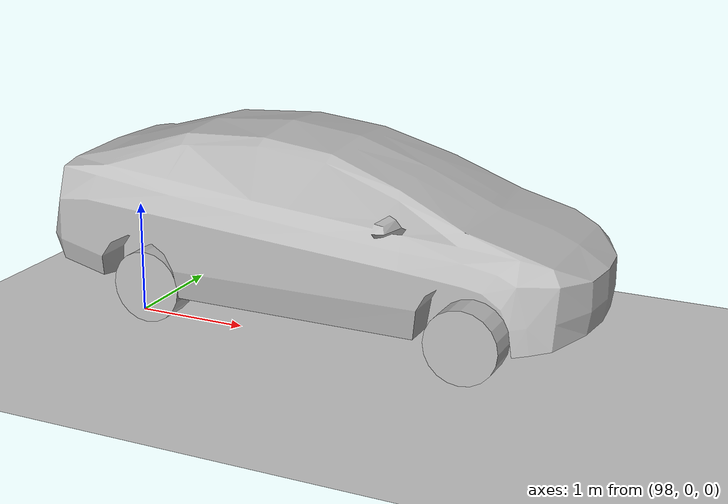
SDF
<?xml version="1.0" encoding="UTF-8"?>
<sdf version="1.9">
  <world name="default">
    <physics type="ode">
      <max_step_size>0.004</max_step_size>
      <real_time_factor>1.0</real_time_factor>
      <real_time_update_rate>250</real_time_update_rate>
    </physics>
    <gravity>0 0 -9.8</gravity>
    <magnetic_field>6e-06 2.3e-05 -4.2e-05</magnetic_field>
    <atmosphere type="adiabatic"/>
    <scene>
      <grid>false</grid>
      <ambient>0.4 0.4 0.4 1</ambient>
      <background>0.7 0.7 0.7 1</background>
      <shadows>true</shadows>
    </scene>
    <model name="ground_plane">
      <static>true</static>
      <link name="link">
        <collision name="collision">
          <geometry>
            <plane>
              <normal>0 0 1</normal>
              <size>1 1</size>
            </plane>
          </geometry>
          <surface>
            <friction>
              <ode/>
            </friction>
            <bounce/>
            <contact/>
          </surface>
        </collision>
        <visual name="visual">
          <geometry>
            <plane>
              <normal>0 0 1</normal>
              <size>500 500</size>
            </plane>
          </geometry>
          <material>
            <ambient>0.8 0.8 0.8 1</ambient>
            <diffuse>0.8 0.8 0.8 1</diffuse>
            <specular>0.8 0.8 0.8 1</specular>
          </material>
        </visual>
        <pose>0 0 0 0 -0 0</pose>
        <inertial>
          <pose>0 0 0 0 -0 0</pose>
          <mass>1</mass>
          <inertia>
            <ixx>1</ixx>
            <ixy>0</ixy>
            <ixz>0</ixz>
            <iyy>1</iyy>
            <iyz>0</iyz>
            <izz>1</izz>
          </inertia>
        </inertial>
        <enable_wind>false</enable_wind>
      </link>
      <pose>0 0 0 0 -0 0</pose>
      <self_collide>false</self_collide>
    </model>
    <light name="sunUTC" type="directional">
      <pose>0 0 500 0 -0 0</pose>
      <cast_shadows>true</cast_shadows>
      <intensity>1</intensity>
      <direction>0.001 0.625 -0.78</direction>
      <diffuse>0.904 0.904 0.904 1</diffuse>
      <specular>0.271 0.271 0.271 1</specular>
      <attenuation>
        <range>2000</range>
        <linear>0</linear>
        <constant>1</constant>
        <quadratic>0</quadratic>
      </attenuation>
      <spot>
        <inner_angle>0</inner_angle>
        <outer_angle>0</outer_angle>
        <falloff>0</falloff>
      </spot>
    </light>
    <spherical_coordinates>
      <surface_model>EARTH_WGS84</surface_model>
      <world_frame_orientation>ENU</world_frame_orientation>
      <latitude_deg>47.397971057728974</latitude_deg>
      <longitude_deg> 8.546163739800146</longitude_deg>
      <elevation>0</elevation>
    </spherical_coordinates>

    <!--                        PRIUS CAR MODEL                           -->
    <model name="prius_hybrid">
      <pose>100 0 0.4 0 0 0</pose>
      <static>true</static>

      <!-- ── Chassis ── -->
      <link name="chassis">
        <pose>0 0 0 0 0 0</pose>
        <inertial>
          <mass>1326</mass>
          <inertia>
            <ixx>534.7</ixx><ixy>0</ixy><ixz>0</ixz>
            <iyy>2099.4</iyy><iyz>0</iyz>
            <izz>2139.2</izz>
          </inertia>
        </inertial>

        <collision name="chassis_collision">
          <pose>0 0 0.05 0 0 0</pose>
          <geometry>
            <box><size>4.55 1.76 0.6</size></box>
          </geometry>
        </collision>

        <collision name="roof_collision">
          <pose>-0.15 0 0.85 0 0 0</pose>
          <geometry>
            <box><size>2.5 1.5 0.5</size></box>
          </geometry>
        </collision>

        <visual name="chassis_visual">
          <pose>0 0 0 0 0 1.5707963</pose>
          <geometry>
            <mesh>
              <uri>file:///home/cyinyong/Workspace/gazebo_models/car_demo/prius_description/meshes/hybrid_body.obj</uri>
              <scale>0.01 0.01 0.01</scale>
            </mesh>
          </geometry>
        </visual>
      </link>

      <!-- ── Front-left wheel ── -->
      <link name="front_left_wheel">
        <pose>1.39 0.75 0.15 0 0 1.5707963</pose>
        <inertial>
          <mass>11</mass>
          <inertia>
            <ixx>0.58411</ixx><ixy>0</ixy><ixz>0</ixz>
            <iyy>0.58411</iyy><iyz>0</iyz>
            <izz>1.0902</izz>
          </inertia>
        </inertial>
        <collision name="collision">
          <geometry>
            <cylinder><radius>0.31</radius><length>0.24</length></cylinder>
          </geometry>
          <surface>
            <friction><ode><mu>1.0</mu><mu2>1.0</mu2></ode></friction>
          </surface>
        </collision>
        <visual name="visual">
          <geometry>
            <mesh>
              <uri>file:///home/cyinyong/Workspace/gazebo_models/car_demo/prius_description/meshes/wheel.obj</uri>
              <scale>0.01 0.01 0.01</scale>
            </mesh>
          </geometry>
        </visual>
      </link>

      <!-- ── Front-right wheel ── -->
      <link name="front_right_wheel">
        <pose>1.39 -0.75 0.15 0 0 1.5707963</pose>
        <inertial>
          <mass>11</mass>
          <inertia>
            <ixx>0.58411</ixx><ixy>0</ixy><ixz>0</ixz>
            <iyy>0.58411</iyy><iyz>0</iyz>
            <izz>1.0902</izz>
          </inertia>
        </inertial>
        <collision name="collision">
          <geometry>
            <cylinder><radius>0.31</radius><length>0.24</length></cylinder>
          </geometry>
          <surface>
            <friction><ode><mu>1.0</mu><mu2>1.0</mu2></ode></friction>
          </surface>
        </collision>
        <visual name="visual">
          <geometry>
            <mesh>
              <uri>file:///home/cyinyong/Workspace/gazebo_models/car_demo/prius_description/meshes/wheel.obj</uri>
              <scale>0.01 0.01 0.01</scale>
            </mesh>
          </geometry>
        </visual>
      </link>

      <!-- ── Rear-left wheel ── -->
      <link name="rear_left_wheel">
        <pose>-1.39 0.75 0.15 0 0 1.5707963</pose>
        <inertial>
          <mass>11</mass>
          <inertia>
            <ixx>0.58411</ixx><ixy>0</ixy><ixz>0</ixz>
            <iyy>0.58411</iyy><iyz>0</iyz>
            <izz>1.0902</izz>
          </inertia>
        </inertial>
        <collision name="collision">
          <geometry>
            <cylinder><radius>0.31</radius><length>0.24</length></cylinder>
          </geometry>
          <surface>
            <friction><ode><mu>1.0</mu><mu2>1.0</mu2></ode></friction>
          </surface>
        </collision>
        <visual name="visual">
          <geometry>
            <mesh>
              <uri>file:///home/cyinyong/Workspace/gazebo_models/car_demo/prius_description/meshes/wheel.obj</uri>
              <scale>0.01 0.01 0.01</scale>
            </mesh>
          </geometry>
        </visual>
      </link>

      <!-- ── Rear-right wheel ── -->
      <link name="rear_right_wheel">
        <pose>-1.39 -0.75 0.2 0 0 1.5707963</pose>
        <inertial>
          <mass>11</mass>
          <inertia>
            <ixx>0.58411</ixx><ixy>0</ixy><ixz>0</ixz>
            <iyy>0.58411</iyy><iyz>0</iyz>
            <izz>1.0902</izz>
          </inertia>
        </inertial>
        <collision name="collision">
          <geometry>
            <cylinder><radius>0.31</radius><length>0.24</length></cylinder>
          </geometry>
          <surface>
            <friction><ode><mu>1.0</mu><mu2>1.0</mu2></ode></friction>
          </surface>
        </collision>
        <visual name="visual">
          <geometry>
            <mesh>
              <uri>file:///home/cyinyong/Workspace/gazebo_models/car_demo/prius_description/meshes/wheel.obj</uri>
              <scale>0.01 0.01 0.01</scale>
            </mesh>
          </geometry>
        </visual>
      </link>

      <!-- ── Joints ── -->
      <joint name="front_left_wheel_joint" type="fixed">
        <parent>chassis</parent>
        <child>front_left_wheel</child>
      </joint>
      <joint name="front_right_wheel_joint" type="fixed">
        <parent>chassis</parent>
        <child>front_right_wheel</child>
      </joint>
      <joint name="rear_left_wheel_joint" type="fixed">
        <parent>chassis</parent>
        <child>rear_left_wheel</child>
      </joint>
      <joint name="rear_right_wheel_joint" type="fixed">
        <parent>chassis</parent>
        <child>rear_right_wheel</child>
      </joint>

    </model>
    <!--                     END PRIUS CAR MODEL                          -->
  </world>
</sdf>
